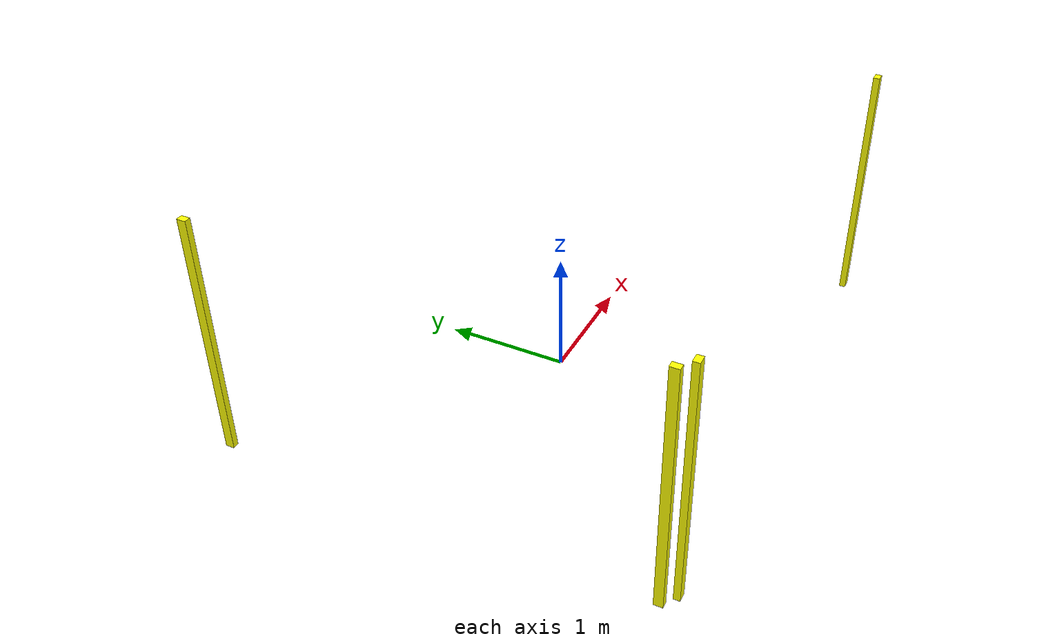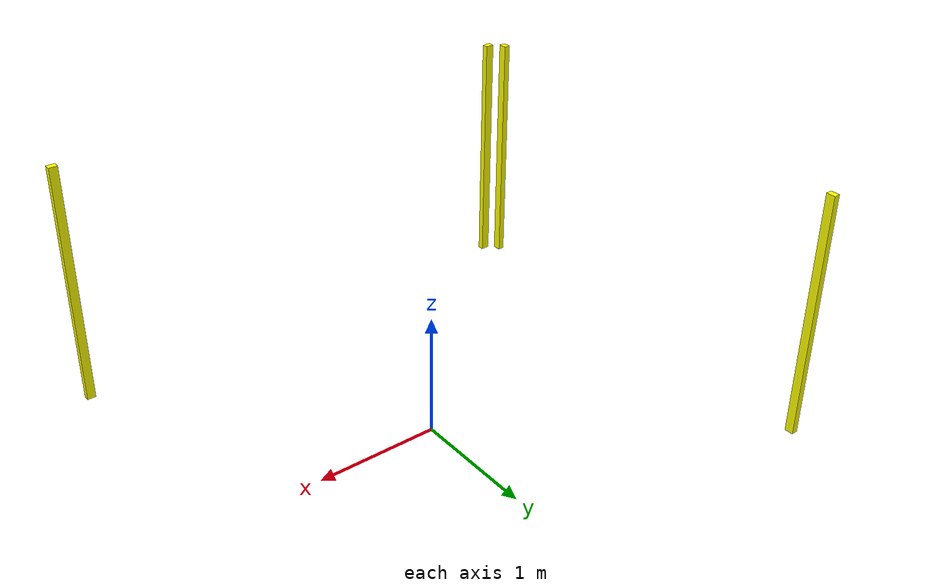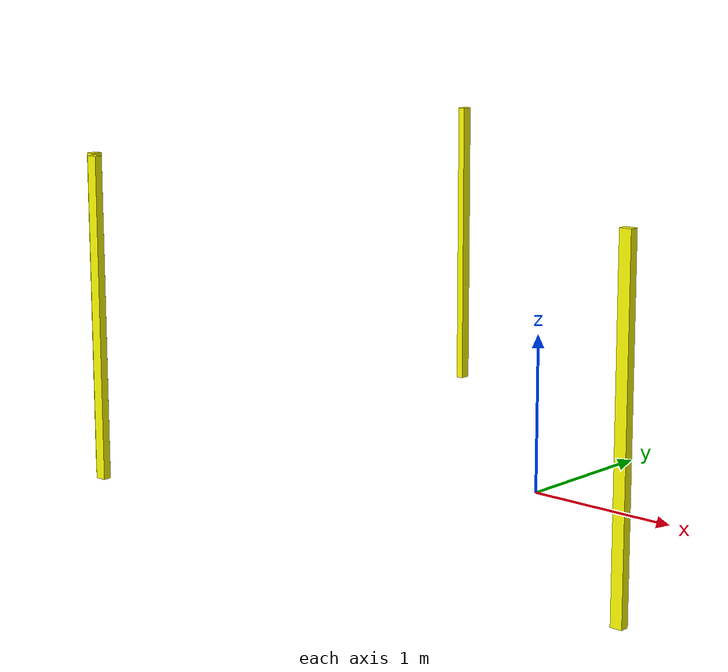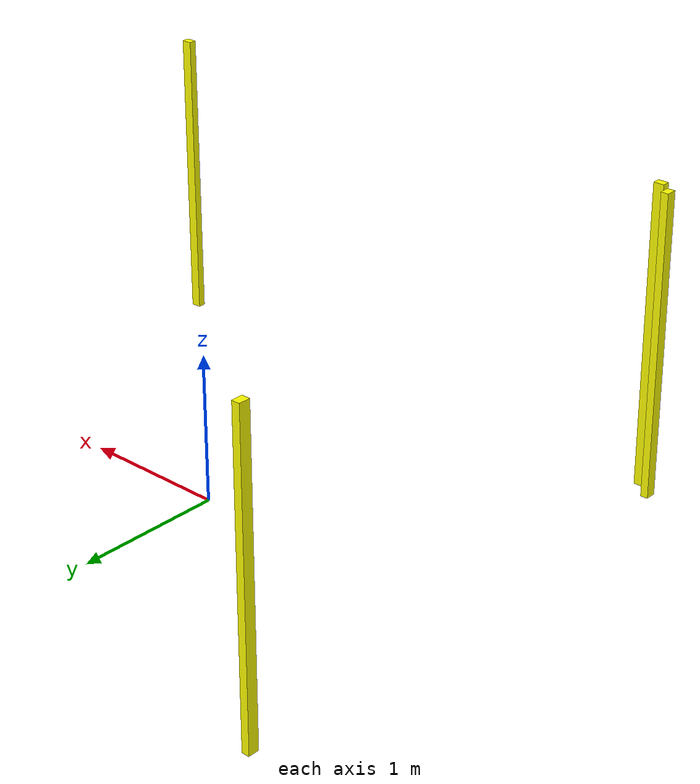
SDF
<?xml version="1.0" ?>
<sdf version="1.6">
  <model name="light_bars">
    <static>true</static>

    <link name="light_bars_link">

      <visual name="light_bar_tv_wall">
        <pose>1.9601 -1.8161 1.1 0 0 0</pose>
        <geometry>
          <box>
            <size> 0.07 0.05 2 </size>
          </box>
        </geometry>
        <material>
            <ambient>0.0 0.0 0.0 1.0</ambient>
            <diffuse>1.0 1.0 0.0 1.0</diffuse>
        </material>
      </visual>

      <collision name="light_bar_tv_wall_collision">
        <pose>1.9601 -1.8161 1.1 0 0 0</pose>
        <geometry>
          <box>
            <size> 0.07 0.05 2 </size>
          </box>
        </geometry>
      </collision>

      <visual name="light_bar_to_tv_wall">
        <pose>-1.9601 -1.8161 1.1 0 0 0</pose>
        <geometry>
          <box>
            <size> 0.07 0.05 2 </size>
          </box>
        </geometry>
        <material>
            <ambient>0.0 0.0 0.0 1.0</ambient>
            <diffuse>1.0 1.0 0.0 1.0</diffuse>
        </material>
      </visual>

      <collision name="light_bar_to_tv_wall_collision">
        <pose>-1.9601 -1.8161 1.1 0 0 0</pose>
        <geometry>
          <box>
            <size> 0.07 0.05 2 </size>
          </box>
        </geometry>
      </collision>

      <visual name="light_bar_side_wall">
        <pose>-2.0701 1.7261 1.1 0 0 0</pose>
        <geometry>
          <box>
            <size> 0.05 0.07 2 </size>
          </box>
        </geometry>
        <material>
            <ambient>0.0 0.0 0.0 1.0</ambient>
            <diffuse>1.0 1.0 0.0 1.0</diffuse>
        </material>
      </visual>

      <collision name="light_bar_side_wall_collision">
        <pose>-2.0701 1.7261 1.1 0 0 0</pose>
        <geometry>
          <box>
            <size> 0.05 0.07 2 </size>
          </box>
        </geometry>
      </collision>

      <visual name="light_bar_to_side_wall">
        <pose>-2.0701 -1.7261 1.1 0 0 0</pose>
        <geometry>
          <box>
            <size> 0.05 0.07 2 </size>
          </box>
        </geometry>
        <material>
            <ambient>0.0 0.0 0.0 1.0</ambient>
            <diffuse>1.0 1.0 0.0 1.0</diffuse>
        </material>
      </visual>

      <collision name="light_bars_side_wall_collision">
        <pose>-2.0701 -1.7261 1.1 0 0 0</pose>
        <geometry>
          <box>
            <size> 0.05 0.07 2 </size>
          </box>
        </geometry>
      </collision>

    </link>
  </model>
</sdf>
